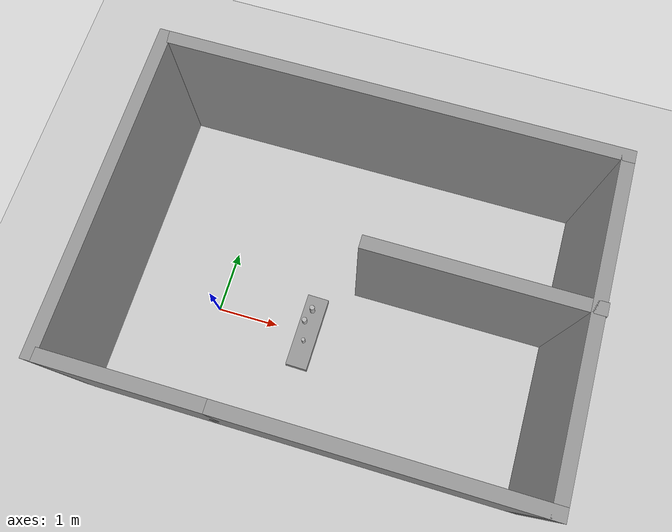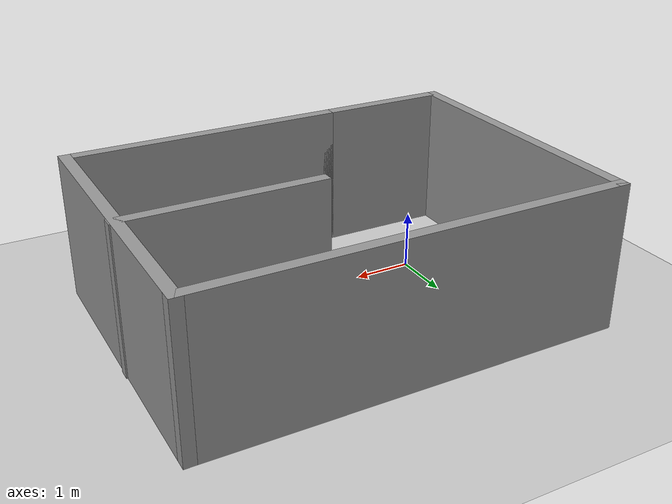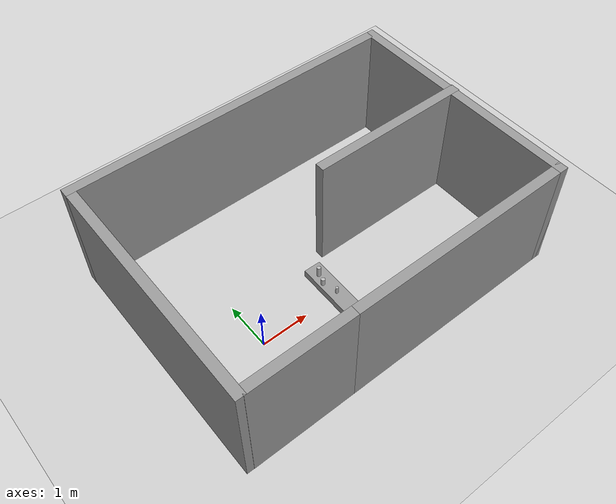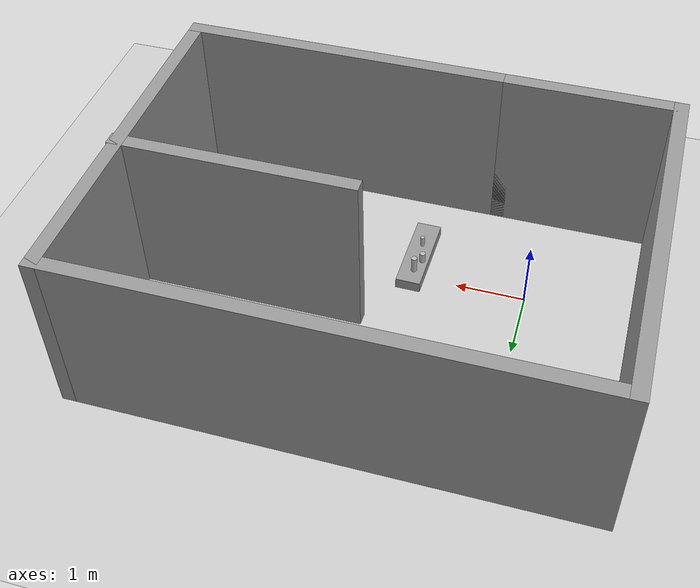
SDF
<sdf version="1.6">
 <world name="default">
  <physics name="default_physics" default="0" type="ode">
   <ode>
    <solver>
     <type>quick</type>
     <iters>20</iters>
     <sor>1</sor>
     <use_dynamic_moi_rescaling>0</use_dynamic_moi_rescaling>
    </solver>
    <constraints>
     <cfm>0</cfm>
     <erp>0.2</erp>
     <contact_max_correcting_vel>100</contact_max_correcting_vel>
     <contact_surface_layer>0</contact_surface_layer>
    </constraints>
   </ode>
   <real_time_update_rate>1000</real_time_update_rate>
   <max_step_size>0.001</max_step_size>
   <real_time_factor>1</real_time_factor>
  </physics>
  <light name="light1" type="directional">
   <pose>-2 0 4 0 -0 0</pose>
   <diffuse>1 1 1 1</diffuse>
   <specular>0.1 0.1 0.1 1</specular>
   <attenuation>
    <range>20</range>
    <constant>0.9</constant>
    <linear>0.01</linear>
    <quadratic>0.001</quadratic>
   </attenuation>
   <direction>0.2 0 -1</direction>
  </light>
  <model name="ground_plane">
   <static>1</static>
   <link name="link">
    <collision name="collision">
     <geometry><plane><normal>0 0 1</normal><size>100 100</size></plane></geometry>
     <surface><friction><ode><mu>100</mu><mu2>50</mu2></ode></friction></surface>
    </collision>
    <visual name="visual">
     <cast_shadows>0</cast_shadows>
     <geometry><plane><normal>0 0 1</normal><size>100 100</size></plane></geometry>
     <material>
      <script><uri>file://media/materials/scripts/gazebo.material</uri><name>Gazebo/Grey</name></script>
     </material>
    </visual>
   </link>
  </model>
  <model name="sprite">
   <static>0</static>
   <link name="link">
    <inertial>
     <mass>0.25</mass>
     <inertia><ixx>0</ixx><ixy>0</ixy><ixz>0</ixz><iyy>0</iyy><iyz>0</iyz><izz>0</izz></inertia>
    </inertial>
    <collision name="collision">
     <pose>0 0 0.075 -3.14159 -0 0</pose>
     <geometry><cylinder><radius>0.04</radius><length>0.15</length></cylinder></geometry>
    </collision>
    <visual name="visual">
     <pose>0 0 0.075 -3.14159 -0 0</pose>
     <geometry><cylinder><radius>0.04</radius><length>0.15</length></cylinder></geometry>
     <material>
      <script>
       <uri>model://sprite/material/scripts</uri>
       <uri>model://sprite/material/textures</uri>
       <name>Custom/sprite</name>
      </script>
     </material>
    </visual>
    <velocity_decay><linear>0</linear><angular>0</angular></velocity_decay>
   </link>
   <pose>1.4881 0.101728 0.478701 0.000306 3.2e-05 -0.001809</pose>
  </model>
  <model name="table_with_objects">
   <link name="Wall_0">
    <collision name="Wall_0_Collision">
     <geometry><box><size>2.37137 0.2 2.5</size></box></geometry>
     <pose>0 0 1.25 0 -0 0</pose>
    </collision>
    <visual name="Wall_0_Visual">
     <pose>0 0 1.25 0 -0 0</pose>
     <geometry><box><size>2.37137 0.2 2.5</size></box></geometry>
     <material>
      <script><uri>file://media/materials/scripts/gazebo.material</uri><name>Gazebo/Grey</name></script>
     </material>
    </visual>
    <velocity_decay><linear>0</linear><angular>0</angular></velocity_decay>
    <pose>-0.355626 -1.71037 0 0 -0 0</pose>
   </link>
   <link name="Wall_1">
    <collision name="Wall_1_Collision">
     <geometry><box><size>4.88038 0.2 2.5</size></box></geometry>
     <pose>0 0 1.25 0 -0 0</pose>
    </collision>
    <visual name="Wall_1_Visual">
     <pose>0 0 1.25 0 -0 0</pose>
     <geometry><box><size>4.88038 0.2 2.5</size></box></geometry>
     <material>
      <script><uri>file://media/materials/scripts/gazebo.material</uri><name>Gazebo/Grey</name></script>
     </material>
    </visual>
    <velocity_decay><linear>0</linear><angular>0</angular></velocity_decay>
    <pose>3.07025 -1.71037 0 0 -0 0</pose>
   </link>
   <link name="Wall_2">
    <collision name="Wall_2_Collision">
     <geometry><box><size>5.19178 0.2 2.5</size></box></geometry>
     <pose>0 0 1.25 0 -0 0</pose>
    </collision>
    <visual name="Wall_2_Visual">
     <pose>0 0 1.25 0 -0 0</pose>
     <geometry><box><size>5.19178 0.2 2.5</size></box></geometry>
     <material>
      <script><uri>file://media/materials/scripts/gazebo.material</uri><name>Gazebo/Grey</name></script>
     </material>
    </visual>
    <velocity_decay><linear>0</linear><angular>0</angular></velocity_decay>
    <pose>5.41044 0.78552 0 0 -0 1.5708</pose>
   </link>
   <link name="Wall_3">
    <collision name="Wall_3_Collision">
     <geometry><box><size>7.19952 0.2 2.5</size></box></geometry>
     <pose>0 0 1.25 0 -0 0</pose>
    </collision>
    <visual name="Wall_3_Visual">
     <pose>0 0 1.25 0 -0 0</pose>
     <geometry><box><size>7.19952 0.2 2.5</size></box></geometry>
     <material>
      <script><uri>file://media/materials/scripts/gazebo.material</uri><name>Gazebo/Grey</name></script>
     </material>
    </visual>
    <velocity_decay><linear>0</linear><angular>0</angular></velocity_decay>
    <pose>1.91068 3.28141 0 0 -0 3.14159</pose>
   </link>
   <link name="Wall_4">
    <collision name="Wall_4_Collision">
     <geometry><box><size>5.18817 0.2 2.5</size></box></geometry>
     <pose>0 0 1.25 0 -0 0</pose>
    </collision>
    <visual name="Wall_4_Visual">
     <pose>0 0 1.25 0 -0 0</pose>
     <geometry><box><size>5.18817 0.2 2.5</size></box></geometry>
     <material>
      <script><uri>file://media/materials/scripts/gazebo.material</uri><name>Gazebo/Grey</name></script>
     </material>
    </visual>
    <velocity_decay><linear>0</linear><angular>0</angular></velocity_decay>
    <pose>-1.58908 0.787327 0 0 0 -1.5708</pose>
   </link>
   <link name="Wall_7">
    <collision name="Wall_7_Collision">
     <geometry><box><size>3.41817 0.2 2.5</size></box></geometry>
     <pose>0 0 1.25 0 -0 0</pose>
    </collision>
    <visual name="Wall_7_Visual">
     <pose>0 0 1.25 0 -0 0</pose>
     <geometry><box><size>3.41817 0.2 2.5</size></box></geometry>
     <material>
      <script><uri>file://media/materials/scripts/gazebo.material</uri><name>Gazebo/Grey</name></script>
     </material>
    </visual>
    <velocity_decay><linear>0</linear><angular>0</angular></velocity_decay>
    <pose>3.82432 0.979561 0 0 -0 0</pose>
   </link>
   <static>1</static>
  </model>
  <gravity>0 0 -9.81</gravity>
  <magnetic_field>6e-06 2.3e-05 -4.2e-05</magnetic_field>
  <atmosphere type="adiabatic"/>
  <scene><ambient>0.4 0.4 0.4 1</ambient><background>0.7 0.7 0.7 1</background><shadows>1</shadows></scene>
  <spherical_coordinates>
   <surface_model>EARTH_WGS84</surface_model>
   <latitude_deg>0</latitude_deg>
   <longitude_deg>0</longitude_deg>
   <elevation>0</elevation>
   <heading_deg>0</heading_deg>
  </spherical_coordinates>
  <model name="unit_box_0_0">
   <pose>1.57631 -0.046288 0.399209 5.3e-05 -1.8e-05 -0.013503</pose>
   <link name="link">
    <inertial>
     <mass>1</mass>
     <inertia>
      <ixx>0.166667</ixx>
      <ixy>0</ixy>
      <ixz>0</ixz>
      <iyy>0.166667</iyy>
      <iyz>0</iyz>
      <izz>0.166667</izz>
     </inertia>
    </inertial>
    <collision name="collision"><geometry><box><size>0.346829 1.1887 0.158981</size></box></geometry></collision>
    <visual name="visual">
     <geometry><box><size>0.346829 1.1887 0.158981</size></box></geometry>
     <material>
      <script><name>Gazebo/Grey</name><uri>file://media/materials/scripts/gazebo.material</uri></script>
     </material>
    </visual>
   </link>
  </model>
  <model name="coke_can_slim_0">
   <static>0</static>
   <link name="link">
    <inertial>
     <mass>0.25</mass>
     <inertia>
      <ixx>7.1507e-05</ixx>
      <ixy>0</ixy>
      <ixz>0</ixz>
      <iyy>7.1507e-05</iyy>
      <iyz>0</iyz>
      <izz>1.4412e-05</izz>
     </inertia>
    </inertial>
    <collision name="collision">
     <geometry><cylinder><radius>0.029</radius><length>0.15</length></cylinder></geometry>
    </collision>
    <visual name="visual">
     <geometry><cylinder><radius>0.029</radius><length>0.15</length></cylinder></geometry>
     <material>
      <script>
       <uri>model://coke_can_slim/material/scripts</uri>
       <uri>model://coke_can_slim/material/textures</uri>
       <name>Custom/coke_can_slim</name>
      </script>
     </material>
    </visual>
    <velocity_decay><linear>0</linear><angular>0</angular></velocity_decay>
   </link>
   <pose>1.56576 -0.211252 0.553683 -0.000221 -1.9e-05 -0.065244</pose>
  </model>
  <model name="pringles2">
   <static>0</static>
   <link name="link">
    <inertial>
     <mass>0.25</mass>
     <inertia><ixx>0</ixx><ixy>0</ixy><ixz>0</ixz><iyy>0</iyy><iyz>0</iyz><izz>0</izz></inertia>
    </inertial>
    <collision name="collision">
     <pose>0 0 0.12 -3.14159 -0 0</pose>
     <geometry><cylinder><radius>0.04</radius><length>0.235</length></cylinder></geometry>
    </collision>
    <visual name="visual">
     <pose>0 0 0.12 -3.14159 -0 0</pose>
     <geometry><cylinder><radius>0.04</radius><length>0.235</length></cylinder></geometry>
     <material>
      <script>
       <uri>model://pringles2/material/scripts</uri>
       <uri>model://pringles2/material/textures</uri>
       <name>Custom/pringles2</name>
      </script>
     </material>
    </visual>
    <velocity_decay><linear>0</linear><angular>0</angular></velocity_decay>
   </link>
   <pose>1.55686 0.306844 0.476422 -3.4e-05 0.000246 -2.5e-05</pose>
  </model>
 </world>
</sdf>
